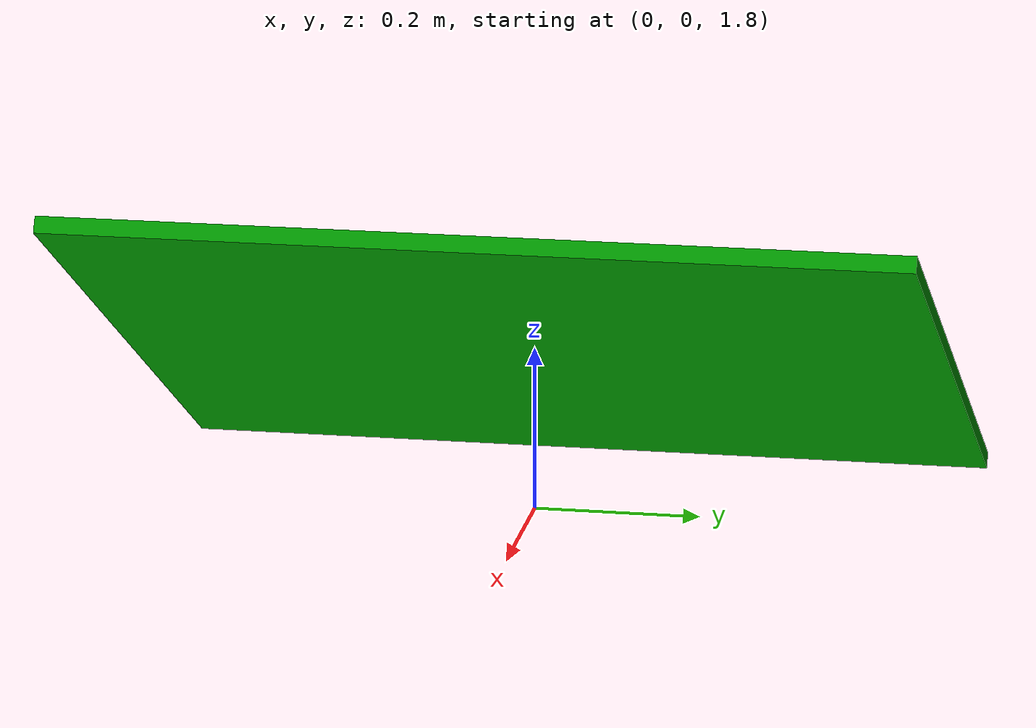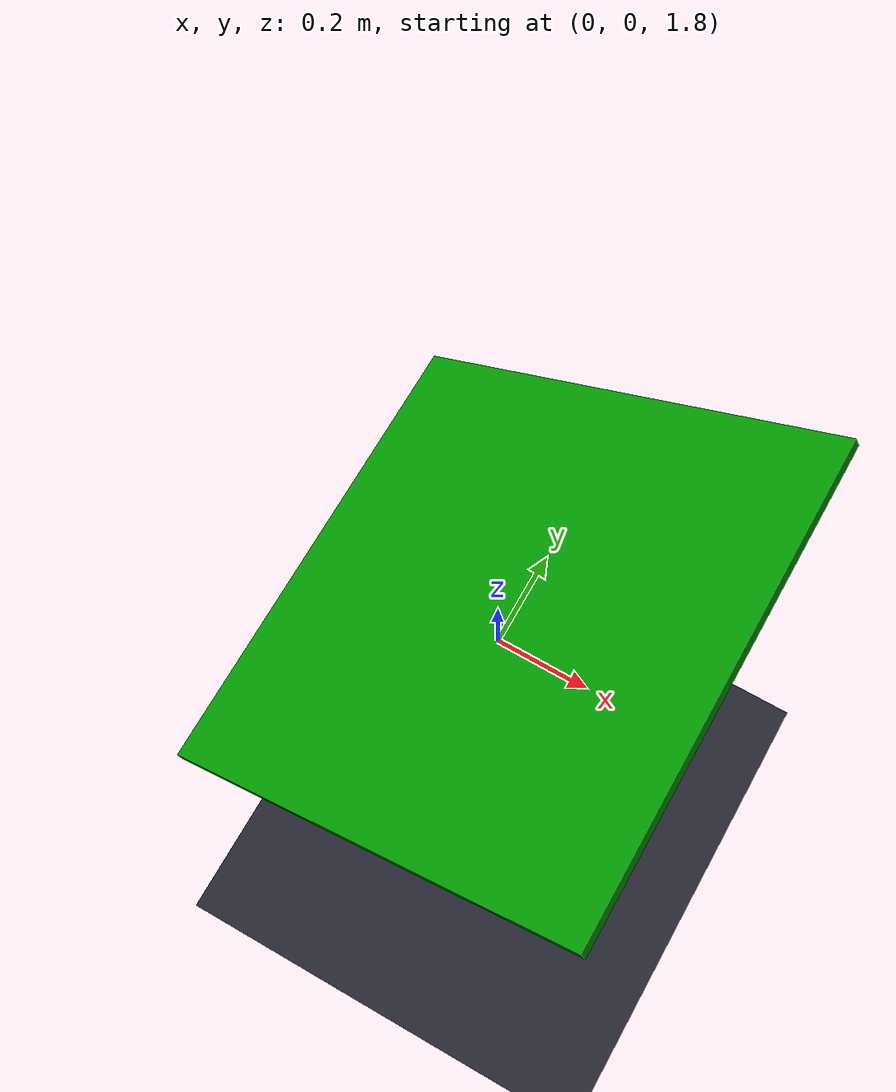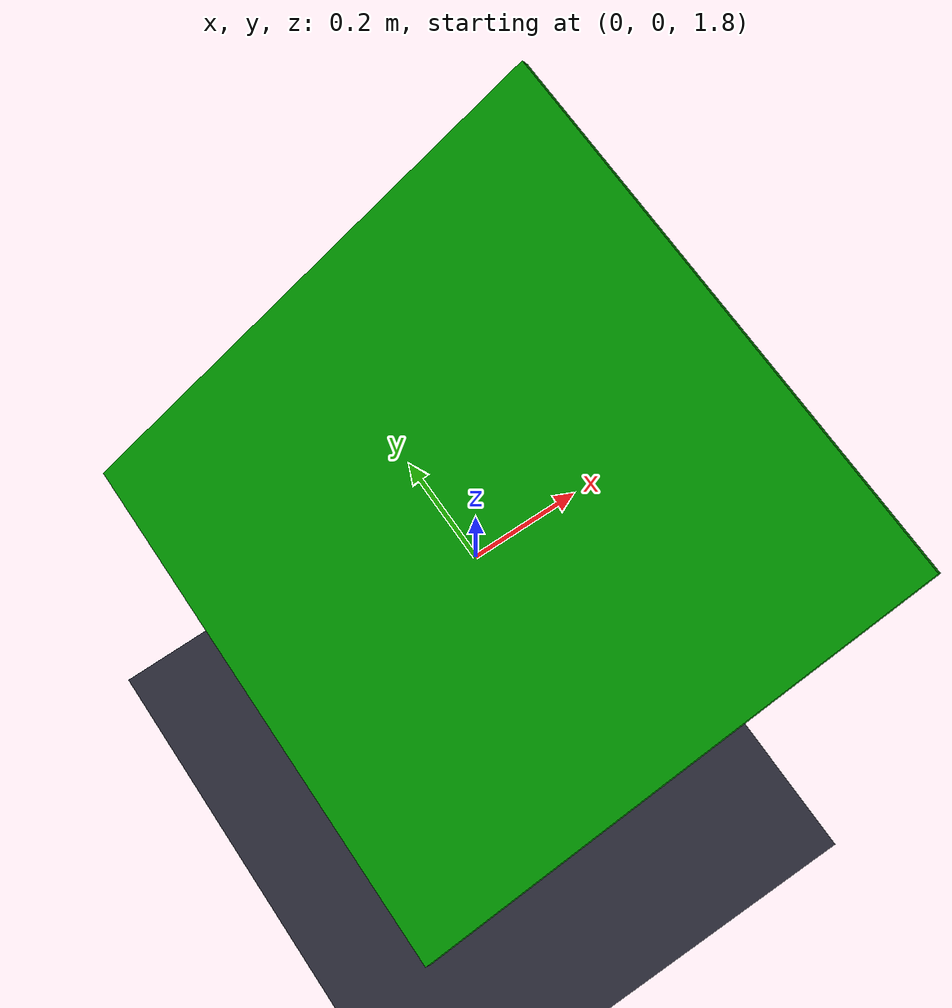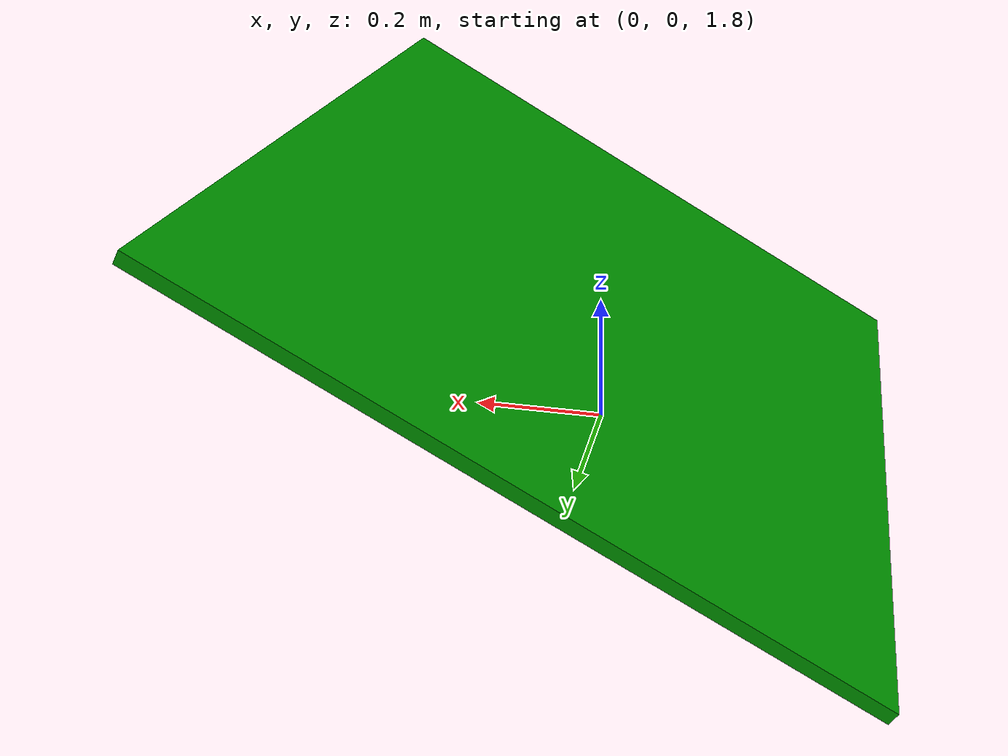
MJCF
<!-- Incluir esquema para validar ficheros xml -->
<mujoco model="Ejemplo 16"
        xmlns:xsi="http://www.w3.org/2001/XMLSchema-instance"
        xsi:noNamespaceSchemaLocation="https://raw.githubusercontent.com/google-deepmind/mujoco/3.13.0/src/xml/generated/mjcf.xsd"
        >

  <!-- Recursos -->
  <asset>

    <!-- Establecer textura de "ajedrez",
         con dos colores: "azul apagado" y "gris" -->
    <texture name="grid" type="2d"
      builtin="checker" width="512" height="512"
      rgb1="0 0 .1" rgb2=".3 .3 .3" />

    <!-- Definir un material etiquetado como "satinado" -->
    <!-- que incluye un "grid" -->
    <material name="azulejos" reflectance=".2" texture="grid"/>
  </asset>

  <worldbody>

    <!-- Suelo del mundo -->
    <!-- Suelo a cuadrados con reflejos -->
    <geom type="plane" size="0 0 1" material="azulejos"/>

    <!-- Plancha inclinada situada 2m de altura, en caida libre -->
    <body>
      <geom type="box" size=".5 .5 .01"
          euler="0 -30 0"
          pos="0 0 2"
          rgba="0 0.6 0 1"/>
      <joint type="free"/>
    </body>

  </worldbody>
</mujoco>
